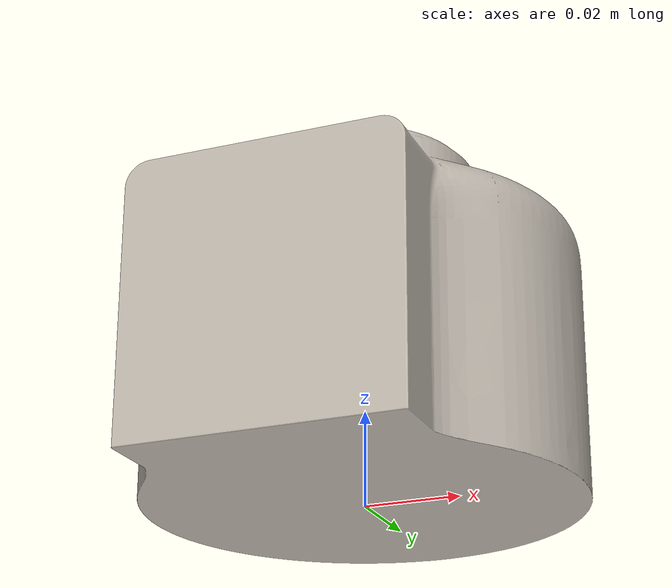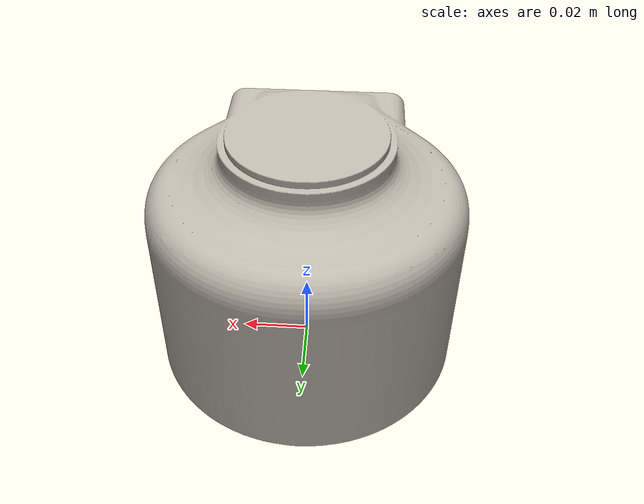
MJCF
<mujoco model="link1">
  <default>
    <default class="visual">
      <geom group="2" type="mesh" contype="0" conaffinity="0"/>
    </default>
    <default class="collision">
      <geom group="3" type="mesh"/>
    </default>
  </default>
  <asset>
    <texture type="2d" name="link1" file="link1.png"/>
    <material name="material0" texture="link1" specular="0.0" shininess="0.25"/>
    <mesh file="link1.obj"/>
  </asset>
  <worldbody>
    <body name="link1">
      <geom material="material0" mesh="link1" class="visual"/>
      <geom mesh="link1" class="collision"/>
    </body>
  </worldbody>
</mujoco>
